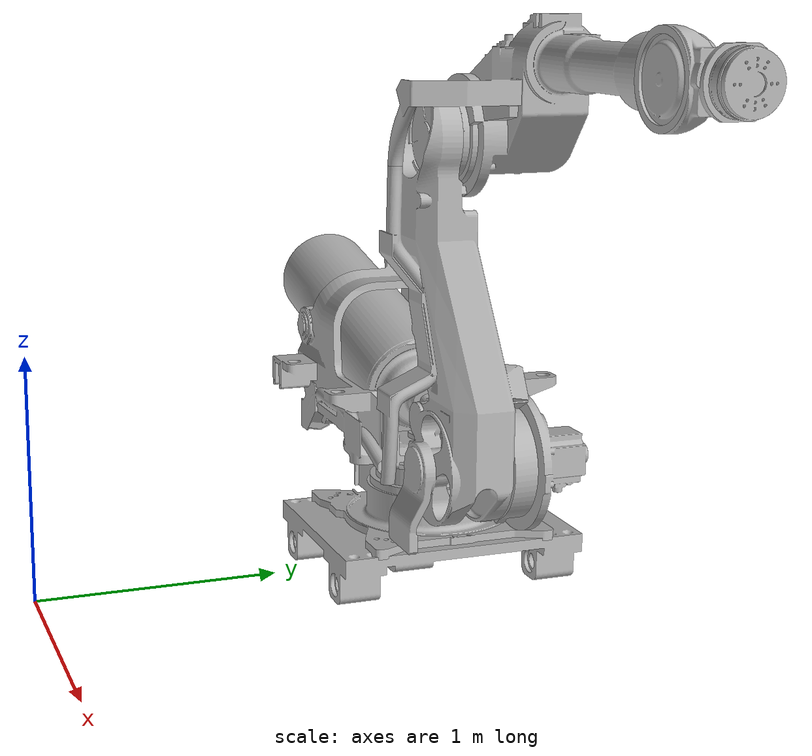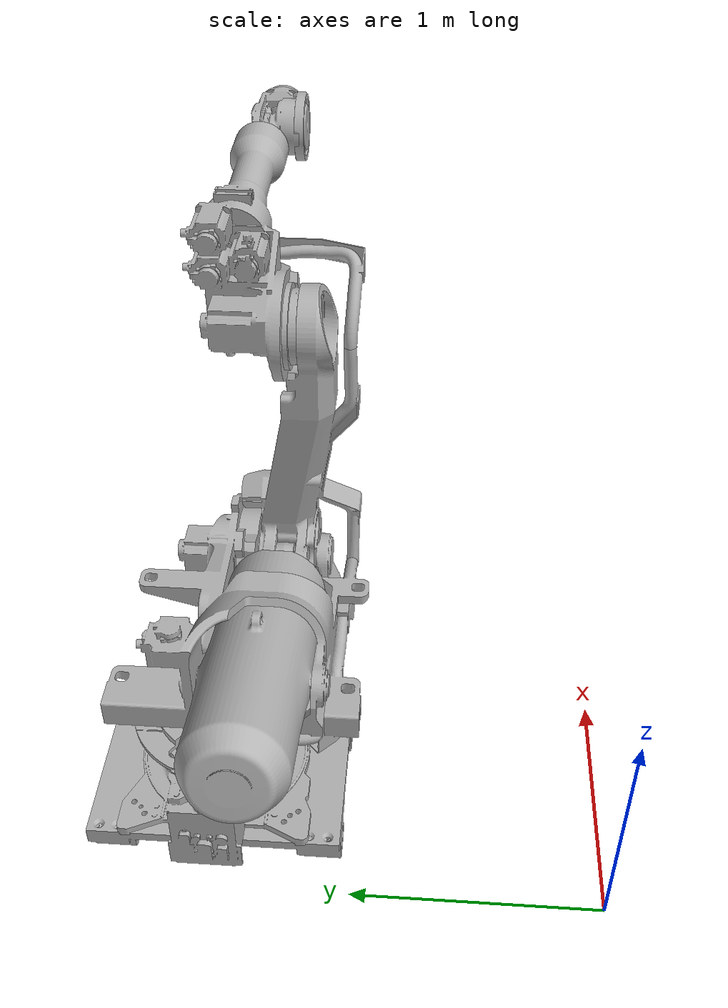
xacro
<?xml version="1.0" ?>
<robot name="Robot" xmlns:xacro="http://www.ros.org/wiki/xacro">

<xacro:include filename="$(find Robot_description)/urdf/materials.xacro" />
<xacro:include filename="$(find Robot_description)/urdf/Robot.trans" />
<xacro:include filename="$(find Robot_description)/urdf/Robot.gazebo" />
<link name="base_link">
  <inertial>
    <origin xyz="0.0 0.0 0.0" rpy="0 0 0"/>
    <mass value="0.0"/>
    <inertia ixx="0.0" iyy="0.0" izz="0.0" ixy="0.0" iyz="0.0" ixz="0.0"/>
  </inertial>
  <visual>
    <origin xyz="0 0 0" rpy="0 0 0"/>
    <geometry>
      <mesh filename="package://Robot_description/meshes/base_link.stl" scale="0.001 0.001 0.001"/>
    </geometry>
    <material name="silver"/>
  </visual>
  <collision>
    <origin xyz="0 0 0" rpy="0 0 0"/>
    <geometry>
      <mesh filename="package://Robot_description/meshes/base_link.stl" scale="0.001 0.001 0.001"/>
    </geometry>
  </collision>
</link>

<link name="placa_base_1">
  <inertial>
    <origin xyz="0.40877638686219 -1.4600099364657049 -0.6525991128809477" rpy="0 0 0"/>
    <mass value="375.4086793589621"/>
    <inertia ixx="38.020673" iyy="20.791186" izz="56.844586" ixy="-8e-06" iyz="-0.118171" ixz="-0.0"/>
  </inertial>
  <visual>
    <origin xyz="0.011211 -2.022818 -0.91961" rpy="0 0 0"/>
    <geometry>
      <mesh filename="package://Robot_description/meshes/placa_base_1.stl" scale="0.001 0.001 0.001"/>
    </geometry>
    <material name="silver"/>
  </visual>
  <collision>
    <origin xyz="0.011211 -2.022818 -0.91961" rpy="0 0 0"/>
    <geometry>
      <mesh filename="package://Robot_description/meshes/placa_base_1.stl" scale="0.001 0.001 0.001"/>
    </geometry>
  </collision>
</link>

<link name="base_r_1">
  <inertial>
    <origin xyz="-0.07435754686676044 -0.0004390727397289851 0.1163853188916053" rpy="0 0 0"/>
    <mass value="570.670009527453"/>
    <inertia ixx="15.007732" iyy="29.800288" izz="35.945755" ixy="-0.008386" iyz="-0.049965" ixz="0.974627"/>
  </inertial>
  <visual>
    <origin xyz="-0.397565 -0.568456 -0.317359" rpy="0 0 0"/>
    <geometry>
      <mesh filename="package://Robot_description/meshes/base_r_1.stl" scale="0.001 0.001 0.001"/>
    </geometry>
    <material name="silver"/>
  </visual>
  <collision>
    <origin xyz="-0.397565 -0.568456 -0.317359" rpy="0 0 0"/>
    <geometry>
      <mesh filename="package://Robot_description/meshes/base_r_1.stl" scale="0.001 0.001 0.001"/>
    </geometry>
  </collision>
</link>

<link name="s_axis_1">
  <inertial>
    <origin xyz="0.2465402833824955 -0.04135438603178698 0.20193834883312112" rpy="0 0 0"/>
    <mass value="704.6084530701152"/>
    <inertia ixx="48.865557" iyy="116.94191" izz="129.875404" ixy="-10.669964" iyz="3.782292" ixz="12.845024"/>
  </inertial>
  <visual>
    <origin xyz="-0.397565 -0.568456 -0.609359" rpy="0 0 0"/>
    <geometry>
      <mesh filename="package://Robot_description/meshes/s_axis_1.stl" scale="0.001 0.001 0.001"/>
    </geometry>
    <material name="silver"/>
  </visual>
  <collision>
    <origin xyz="-0.397565 -0.568456 -0.609359" rpy="0 0 0"/>
    <geometry>
      <mesh filename="package://Robot_description/meshes/s_axis_1.stl" scale="0.001 0.001 0.001"/>
    </geometry>
  </collision>
</link>

<link name="l_axis_1">
  <inertial>
    <origin xyz="0.027205812442917532 -0.16142313250842483 0.46588585894516765" rpy="0 0 0"/>
    <mass value="552.7971519942739"/>
    <inertia ixx="81.341316" iyy="82.03601" izz="9.751945" ixy="-0.647957" iyz="8.230718" ixz="1.797307"/>
  </inertial>
  <visual>
    <origin xyz="-1.137571 -0.490512 -0.757359" rpy="0 0 0"/>
    <geometry>
      <mesh filename="package://Robot_description/meshes/l_axis_1.stl" scale="0.001 0.001 0.001"/>
    </geometry>
    <material name="silver"/>
  </visual>
  <collision>
    <origin xyz="-1.137571 -0.490512 -0.757359" rpy="0 0 0"/>
    <geometry>
      <mesh filename="package://Robot_description/meshes/l_axis_1.stl" scale="0.001 0.001 0.001"/>
    </geometry>
  </collision>
</link>

<link name="u_axis_1">
  <inertial>
    <origin xyz="0.2916606047917749 0.2143462434100445 0.14928647205424506" rpy="0 0 0"/>
    <mass value="483.4234110989252"/>
    <inertia ixx="14.609702" iyy="57.2139" izz="54.579399" ixy="-6.234945" iyz="-3.416393" ixz="-11.50764"/>
  </inertial>
  <visual>
    <origin xyz="-1.137534 -0.301512 -1.907359" rpy="0 0 0"/>
    <geometry>
      <mesh filename="package://Robot_description/meshes/u_axis_1.stl" scale="0.001 0.001 0.001"/>
    </geometry>
    <material name="silver"/>
  </visual>
  <collision>
    <origin xyz="-1.137534 -0.301512 -1.907359" rpy="0 0 0"/>
    <geometry>
      <mesh filename="package://Robot_description/meshes/u_axis_1.stl" scale="0.001 0.001 0.001"/>
    </geometry>
  </collision>
</link>

<link name="r_axis_1">
  <inertial>
    <origin xyz="0.1685563993211039 -0.07412707539147773 -0.0004901924830997828" rpy="0 0 0"/>
    <mass value="8.899946281447061"/>
    <inertia ixx="0.061278" iyy="0.080342" izz="0.089371" ixy="0.018596" iyz="0.000249" ixz="8.4e-05"/>
  </inertial>
  <visual>
    <origin xyz="-2.166033 -0.568589 -2.157277" rpy="0 0 0"/>
    <geometry>
      <mesh filename="package://Robot_description/meshes/r_axis_1.stl" scale="0.001 0.001 0.001"/>
    </geometry>
    <material name="silver"/>
  </visual>
  <collision>
    <origin xyz="-2.166033 -0.568589 -2.157277" rpy="0 0 0"/>
    <geometry>
      <mesh filename="package://Robot_description/meshes/r_axis_1.stl" scale="0.001 0.001 0.001"/>
    </geometry>
  </collision>
</link>

<link name="b_axis_1">
  <inertial>
    <origin xyz="0.10691585220915689 0.13249813747746259 1.7028415353781412e-05" rpy="0 0 0"/>
    <mass value="45.978906535968754"/>
    <inertia ixx="0.382055" iyy="0.490149" izz="0.580024" ixy="0.018167" iyz="0.000188" ixz="-1.8e-05"/>
  </inertial>
  <visual>
    <origin xyz="-2.362546 -0.399739 -2.157247" rpy="0 0 0"/>
    <geometry>
      <mesh filename="package://Robot_description/meshes/b_axis_1.stl" scale="0.001 0.001 0.001"/>
    </geometry>
    <material name="silver"/>
  </visual>
  <collision>
    <origin xyz="-2.362546 -0.399739 -2.157247" rpy="0 0 0"/>
    <geometry>
      <mesh filename="package://Robot_description/meshes/b_axis_1.stl" scale="0.001 0.001 0.001"/>
    </geometry>
  </collision>
</link>

<link name="t_axis_1">
  <inertial>
    <origin xyz="0.014205681418204996 1.413610909106744e-06 -3.822585659118971e-06" rpy="0 0 0"/>
    <mass value="5.836276011069466"/>
    <inertia ixx="0.025268" iyy="0.013037" izz="0.013093" ixy="1e-06" iyz="0.0" ixz="-4e-06"/>
  </inertial>
  <visual>
    <origin xyz="-2.582537 -0.527255 -2.157192" rpy="0 0 0"/>
    <geometry>
      <mesh filename="package://Robot_description/meshes/t_axis_1.stl" scale="0.001 0.001 0.001"/>
    </geometry>
    <material name="silver"/>
  </visual>
  <collision>
    <origin xyz="-2.582537 -0.527255 -2.157192" rpy="0 0 0"/>
    <geometry>
      <mesh filename="package://Robot_description/meshes/t_axis_1.stl" scale="0.001 0.001 0.001"/>
    </geometry>
  </collision>
</link>

<link name="balancer_2_1">
  <inertial>
    <origin xyz="-1.0071355171291383 -1.141364295073391 -0.48045645693854944" rpy="0 0 0"/>
    <mass value="34.720628844492076"/>
    <inertia ixx="0.366051" iyy="6.432976" izz="6.085232" ixy="0.006621" iyz="-0.001566" ixz="1.432173"/>
  </inertial>
  <visual>
    <origin xyz="-1.412434 -1.519454 -1.498385" rpy="0 0 0"/>
    <geometry>
      <mesh filename="package://Robot_description/meshes/balancer_2_1.stl" scale="0.001 0.001 0.001"/>
    </geometry>
    <material name="silver"/>
  </visual>
  <collision>
    <origin xyz="-1.412434 -1.519454 -1.498385" rpy="0 0 0"/>
    <geometry>
      <mesh filename="package://Robot_description/meshes/balancer_2_1.stl" scale="0.001 0.001 0.001"/>
    </geometry>
  </collision>
</link>

<link name="balancer_1_1">
  <inertial>
    <origin xyz="0.27454396791234575 -1.5743809510766291 -0.7961805409798757" rpy="0 0 0"/>
    <mass value="1052.0941459866974"/>
    <inertia ixx="24.423311" iyy="134.3907" izz="128.357793" ixy="-0.008244" iyz="0.001953" ixz="26.045583"/>
  </inertial>
  <visual>
    <origin xyz="0.078722 -1.952822 -1.863697" rpy="0 0 0"/>
    <geometry>
      <mesh filename="package://Robot_description/meshes/balancer_1_1.stl" scale="0.001 0.001 0.001"/>
    </geometry>
    <material name="silver"/>
  </visual>
  <collision>
    <origin xyz="0.078722 -1.952822 -1.863697" rpy="0 0 0"/>
    <geometry>
      <mesh filename="package://Robot_description/meshes/balancer_1_1.stl" scale="0.001 0.001 0.001"/>
    </geometry>
  </collision>
</link>

<joint name="base_link1" type="prismatic">
  <origin xyz="-0.011211 2.022818 0.91961" rpy="0 0 0"/>
  <parent link="base_link"/>
  <child link="placa_base_1"/>
  <axis xyz="0.0 -1.0 0.0"/>
  <limit upper="-0.01" lower="-1.9" effort="100" velocity="100"/>
</joint>

<joint name="rig1" type="fixed">
  <origin xyz="0.408776 -1.454362 -0.602251" rpy="0 0 0"/>
  <parent link="placa_base_1"/>
  <child link="base_r_1"/>
</joint>

<joint name="link1_link2" type="continuous">
  <origin xyz="0.0 0.0 0.292" rpy="0 0 0"/>
  <parent link="base_r_1"/>
  <child link="s_axis_1"/>
  <axis xyz="0.0 0.0 1.0"/>
</joint>

<joint name="link2_link3" type="revolute">
  <origin xyz="0.740006 -0.077944 0.148" rpy="0 0 0"/>
  <parent link="s_axis_1"/>
  <child link="l_axis_1"/>
  <axis xyz="7.5e-05 -1.0 0.0"/>
  <limit upper="0.610865" lower="-1.22173" effort="100" velocity="100"/>
</joint>

<joint name="link3_link4" type="continuous">
  <origin xyz="-3.7e-05 -0.189 1.15" rpy="0 0 0"/>
  <parent link="l_axis_1"/>
  <child link="u_axis_1"/>
  <axis xyz="-7.5e-05 1.0 -0.0"/>
</joint>

<joint name="link4_link5" type="continuous">
  <origin xyz="1.028499 0.267077 0.249918" rpy="0 0 0"/>
  <parent link="u_axis_1"/>
  <child link="r_axis_1"/>
  <axis xyz="1.0 7.5e-05 -8e-05"/>
</joint>

<joint name="link5_link6" type="revolute">
  <origin xyz="0.196513 -0.16885 -3e-05" rpy="0 0 0"/>
  <parent link="r_axis_1"/>
  <child link="b_axis_1"/>
  <axis xyz="7.5e-05 -1.0 -8.2e-05"/>
  <limit upper="2.094395" lower="-2.094395" effort="100" velocity="100"/>
</joint>

<joint name="link6_link7" type="continuous">
  <origin xyz="0.219991 0.127516 -5.5e-05" rpy="0 0 0"/>
  <parent link="b_axis_1"/>
  <child link="t_axis_1"/>
  <axis xyz="1.0 7.5e-05 -0.000297"/>
</joint>

<joint name="rig2" type="fixed">
  <origin xyz="1.014869 0.950998 0.889026" rpy="0 0 0"/>
  <parent link="s_axis_1"/>
  <child link="balancer_2_1"/>
</joint>

<joint name="rig3" type="fixed">
  <origin xyz="-1.491156 0.433368 0.365312" rpy="0 0 0"/>
  <parent link="balancer_2_1"/>
  <child link="balancer_1_1"/>
</joint>

</robot>

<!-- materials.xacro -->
<robot name="Robot" xmlns:xacro="http://www.ros.org/wiki/xacro" >

<material name="silver">
  <color rgba="0.700 0.700 0.700 1.000"/>
</material>

<material name="blue">
  <color rgba="0.000 0.000 1.000 1.000"/>
</material>

</robot>

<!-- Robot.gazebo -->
<robot name="Robot" xmlns:xacro="http://www.ros.org/wiki/xacro" >

<xacro:property name="body_color" value="Gazebo/Silver" />

<gazebo>
  <plugin name="control" filename="libgazebo_ros_control.so"/>
</gazebo>
<gazebo reference="base_link">
  <material>${body_color}</material>
  <mu1>0.2</mu1>
  <mu2>0.2</mu2>
  <selfCollide>true</selfCollide>
  <gravity>true</gravity>
</gazebo>

<gazebo reference="placa_base_1">
  <material>${body_color}</material>
  <mu1>0.2</mu1>
  <mu2>0.2</mu2>
  <selfCollide>true</selfCollide>
</gazebo>

<gazebo reference="base_r_1">
  <material>${body_color}</material>
  <mu1>0.2</mu1>
  <mu2>0.2</mu2>
  <selfCollide>true</selfCollide>
</gazebo>

<gazebo reference="s_axis_1">
  <material>${body_color}</material>
  <mu1>0.2</mu1>
  <mu2>0.2</mu2>
  <selfCollide>true</selfCollide>
</gazebo>

<gazebo reference="l_axis_1">
  <material>${body_color}</material>
  <mu1>0.2</mu1>
  <mu2>0.2</mu2>
  <selfCollide>true</selfCollide>
</gazebo>

<gazebo reference="u_axis_1">
  <material>${body_color}</material>
  <mu1>0.2</mu1>
  <mu2>0.2</mu2>
  <selfCollide>true</selfCollide>
</gazebo>

<gazebo reference="r_axis_1">
  <material>${body_color}</material>
  <mu1>0.2</mu1>
  <mu2>0.2</mu2>
  <selfCollide>true</selfCollide>
</gazebo>

<gazebo reference="b_axis_1">
  <material>${body_color}</material>
  <mu1>0.2</mu1>
  <mu2>0.2</mu2>
  <selfCollide>true</selfCollide>
</gazebo>

<gazebo reference="t_axis_1">
  <material>${body_color}</material>
  <mu1>0.2</mu1>
  <mu2>0.2</mu2>
  <selfCollide>true</selfCollide>
</gazebo>

<gazebo reference="balancer_2_1">
  <material>${body_color}</material>
  <mu1>0.2</mu1>
  <mu2>0.2</mu2>
  <selfCollide>true</selfCollide>
</gazebo>

<gazebo reference="balancer_1_1">
  <material>${body_color}</material>
  <mu1>0.2</mu1>
  <mu2>0.2</mu2>
  <selfCollide>true</selfCollide>
</gazebo>

</robot>
